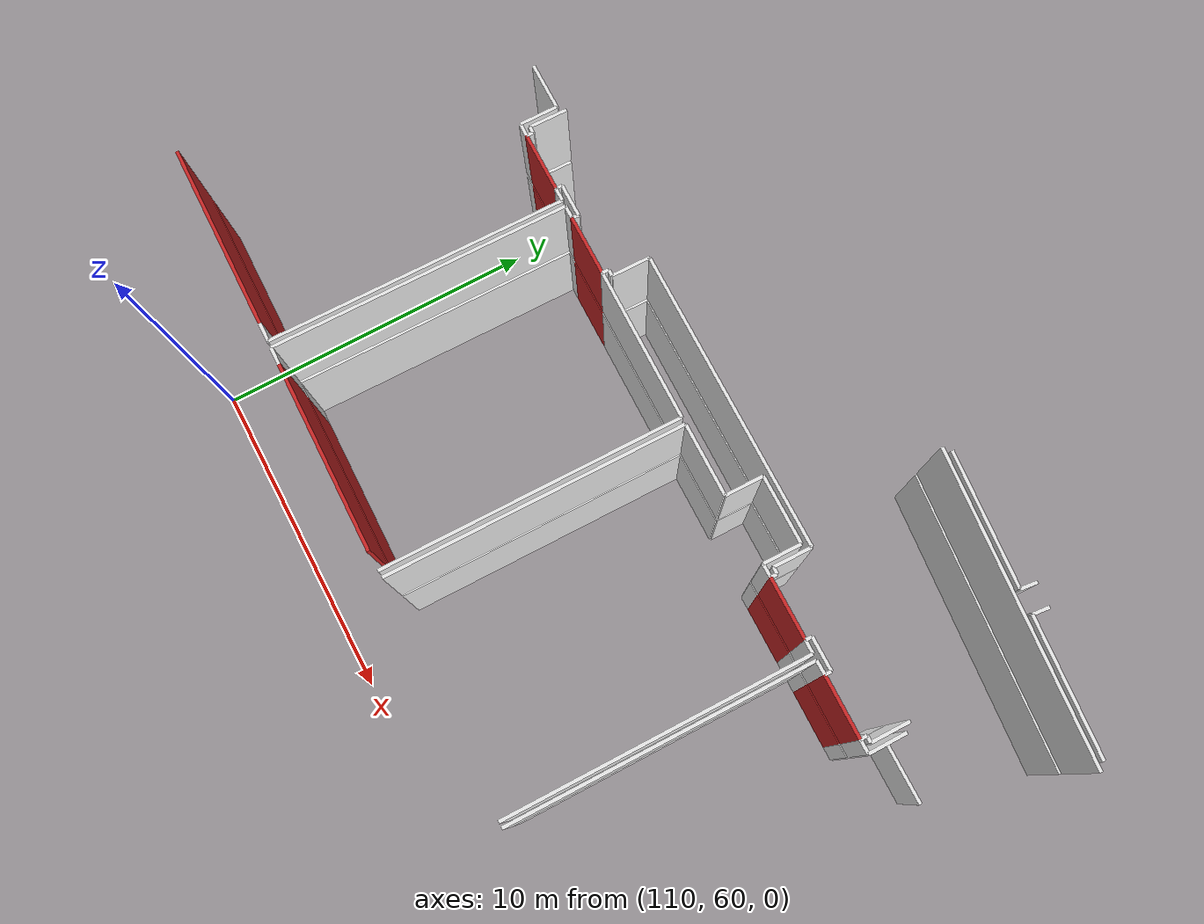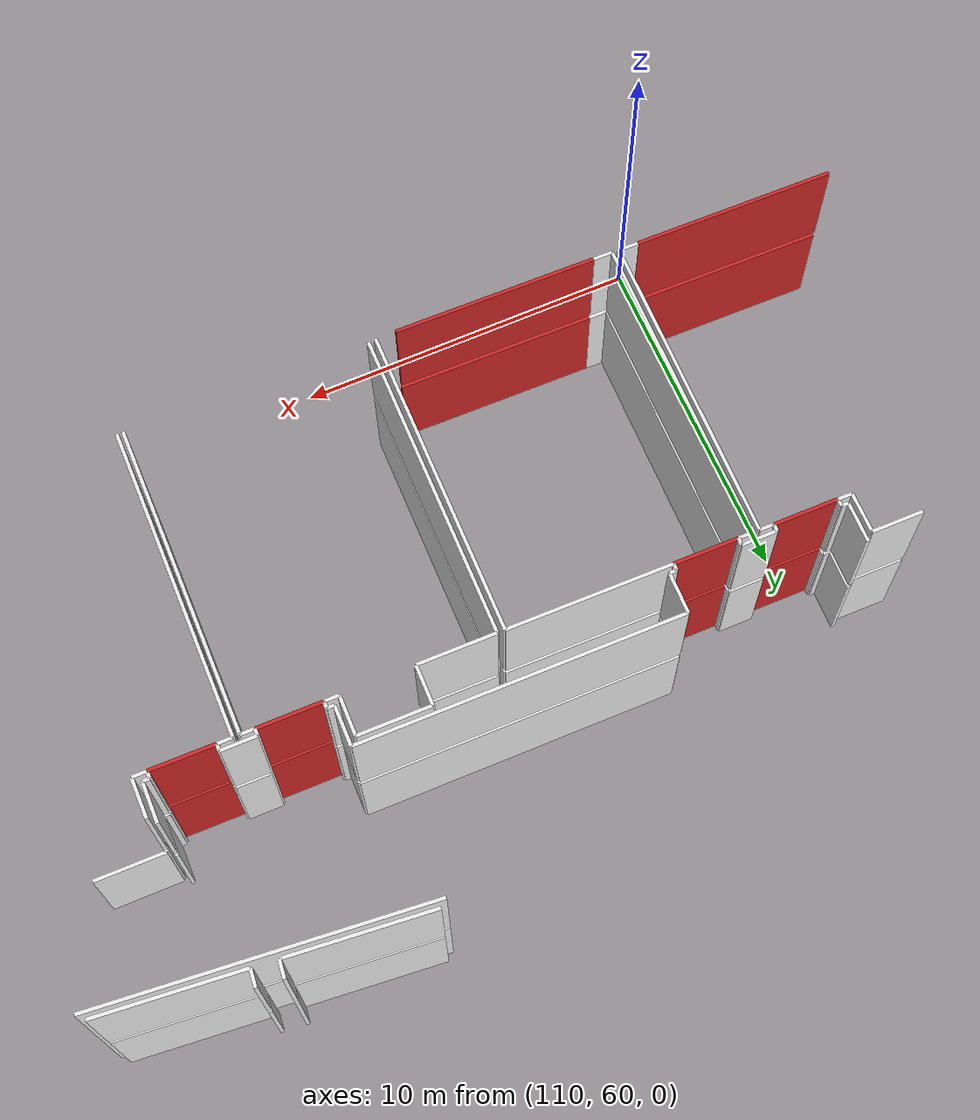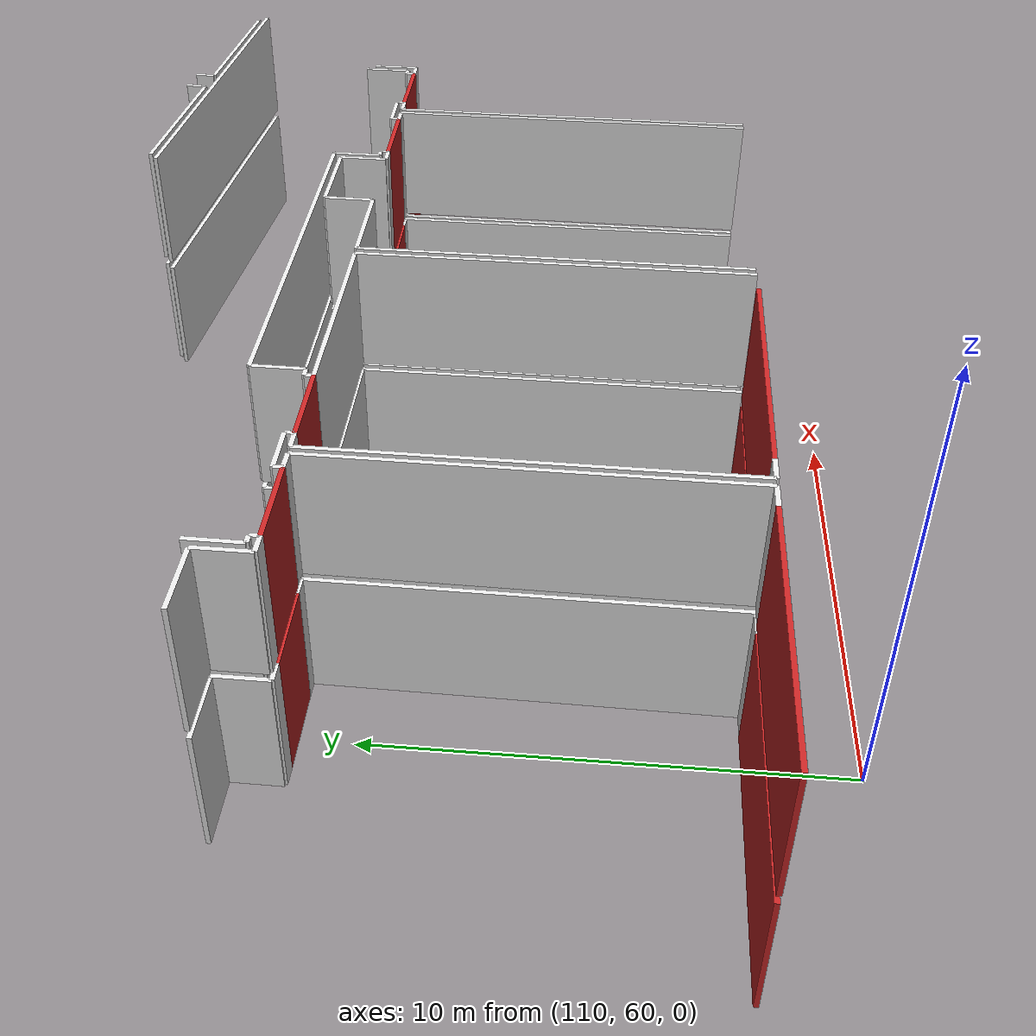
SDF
<sdf version="1.6">
 <world name="default">
  <model name="wall_127.1_71.0_0.0">
   <static>true</static>
   <pose>127.05000000001746 70.9550000000745 1.5 0 0 3.1249275297309125</pose>
   <link name="link">
    <visual name="visual">
     <geometry><box><size>1.8002499826340055 0.1 3</size></box></geometry>
     <material>
      <script><uri>file://media/materials/scripts/gazebo.material</uri><name>Gazebo/Red</name></script>
     </material>
    </visual>
   </link>
  </model>
  <model name="wall_124.3_71.0_0.0">
   <static>true</static>
   <pose>124.26499999998487 70.98999999999069 1.5 0 0 3.1305433795001205</pose>
   <link name="link">
    <visual name="visual">
     <geometry><box><size>1.810110493862824 0.1 3</size></box></geometry>
     <material>
      <script><uri>file://media/materials/scripts/gazebo.material</uri><name>Gazebo/Red</name></script>
     </material>
    </visual>
   </link>
  </model>
  <model name="wall_113.0_71.1_0.0">
   <static>true</static>
   <pose>113.03500000000349 71.13000000012107 1.5 0 0 3.1305433795001205</pose>
   <link name="link">
    <visual name="visual">
     <geometry><box><size>1.810110493862824 0.1 3</size></box></geometry>
     <material>
      <script><uri>file://media/materials/scripts/gazebo.material</uri><name>Gazebo/Red</name></script>
     </material>
    </visual>
   </link>
  </model>
  <model name="wall_110.2_71.2_0.0">
   <static>true</static>
   <pose>110.23500000001513 71.17000000015832 1.5 0 0 3.1305433795001205</pose>
   <link name="link">
    <visual name="visual">
     <geometry><box><size>1.810110493862824 0.1 3</size></box></geometry>
     <material>
      <script><uri>file://media/materials/scripts/gazebo.material</uri><name>Gazebo/Red</name></script>
     </material>
    </visual>
   </link>
  </model>
  <model name="wall_115.0_62.2_0.0">
   <static>true</static>
   <pose>115.0 62.23999999999069 1.5 0 0 -0.014034166198596688</pose>
   <link name="link">
    <visual name="visual">
     <geometry><box><size>5.700561375812611 0.1 3</size></box></geometry>
     <material>
      <script><uri>file://media/materials/scripts/gazebo.material</uri><name>Gazebo/Red</name></script>
     </material>
    </visual>
   </link>
  </model>
  <model name="wall_108.0_62.3_0.0">
   <static>true</static>
   <pose>107.99499999999534 62.34499999997206 1.5 0 0 -0.012258580285916719</pose>
   <link name="link">
    <visual name="visual">
     <geometry><box><size>5.710429055644689 0.1 3</size></box></geometry>
     <material>
      <script><uri>file://media/materials/scripts/gazebo.material</uri><name>Gazebo/Red</name></script>
     </material>
    </visual>
   </link>
  </model>
  <model name="wall_127.4_76.6_0.0">
   <static>true</static>
   <pose>127.375 76.64500000001863 1.5 0 0 -1.6724851786059602</pose>
   <link name="link">
    <visual name="visual">
     <geometry><box><size>0.4925444144680799 0.1 3</size></box></geometry>
     <material>
      <script><uri>file://media/materials/scripts/gazebo.material</uri><name>Gazebo/White</name></script>
     </material>
    </visual>
   </link>
  </model>
  <model name="wall_129.3_76.2_0.0">
   <static>true</static>
   <pose>129.31500000000233 76.19999999995343 1.5 0 0 -0.10143187482049365</pose>
   <link name="link">
    <visual name="visual">
     <geometry><box><size>3.9503037858281362 0.1 3</size></box></geometry>
     <material>
      <script><uri>file://media/materials/scripts/gazebo.material</uri><name>Gazebo/White</name></script>
     </material>
    </visual>
   </link>
  </model>
  <model name="wall_124.7_76.7_0.0">
   <static>true</static>
   <pose>124.68000000002212 76.67000000015832 1.5 0 0 -0.10117618901410476</pose>
   <link name="link">
    <visual name="visual">
     <geometry><box><size>3.9602525171943066 0.1 3</size></box></geometry>
     <material>
      <script><uri>file://media/materials/scripts/gazebo.material</uri><name>Gazebo/White</name></script>
     </material>
    </visual>
   </link>
  </model>
  <model name="wall_126.7_76.7_0.0">
   <static>true</static>
   <pose>126.68000000002212 76.72000000020489 1.5 0 0 1.4513674007811488</pose>
   <link name="link">
    <visual name="visual">
     <geometry><box><size>0.5035871324802894 0.1 3</size></box></geometry>
     <material>
      <script><uri>file://media/materials/scripts/gazebo.material</uri><name>Gazebo/White</name></script>
     </material>
    </visual>
   </link>
  </model>
  <model name="wall_127.0_76.2_0.0">
   <static>true</static>
   <pose>126.98499999998603 76.23999999999069 1.5 0 0 3.0415928752928885</pose>
   <link name="link">
    <visual name="visual">
     <geometry><box><size>9.01503743748916 0.1 3</size></box></geometry>
     <material>
      <script><uri>file://media/materials/scripts/gazebo.material</uri><name>Gazebo/White</name></script>
     </material>
    </visual>
   </link>
  </model>
  <model name="wall_109.1_72.0_0.0">
   <static>true</static>
   <pose>109.14000000001397 71.95499999984168 1.5 0 0 -1.5881858781018272</pose>
   <link name="link">
    <visual name="visual">
     <geometry><box><size>1.1501738998023476 0.1 3</size></box></geometry>
     <material>
      <script><uri>file://media/materials/scripts/gazebo.material</uri><name>Gazebo/White</name></script>
     </material>
    </visual>
   </link>
  </model>
  <model name="wall_109.2_71.4_0.0">
   <static>true</static>
   <pose>109.23000000001048 71.37999999988824 1.5 0 0 0.0</pose>
   <link name="link">
    <visual name="visual">
     <geometry><box><size>0.20000000001164153 0.1 3</size></box></geometry>
     <material>
      <script><uri>file://media/materials/scripts/gazebo.material</uri><name>Gazebo/White</name></script>
     </material>
    </visual>
   </link>
  </model>
  <model name="wall_109.3_71.3_0.0">
   <static>true</static>
   <pose>109.3300000000163 71.28000000002794 1.5 0 0 -1.5707963267948966</pose>
   <link name="link">
    <visual name="visual">
     <geometry><box><size>0.19999999972060323 0.1 3</size></box></geometry>
     <material>
      <script><uri>file://media/materials/scripts/gazebo.material</uri><name>Gazebo/White</name></script>
     </material>
    </visual>
   </link>
  </model>
  <model name="wall_111.1_71.3_0.0">
   <static>true</static>
   <pose>111.14000000001397 71.25500000012107 1.5 0 0 1.5707963267948966</pose>
   <link name="link">
    <visual name="visual">
     <geometry><box><size>0.18999999994412065 0.1 3</size></box></geometry>
     <material>
      <script><uri>file://media/materials/scripts/gazebo.material</uri><name>Gazebo/White</name></script>
     </material>
    </visual>
   </link>
  </model>
  <model name="wall_111.6_71.3_0.0">
   <static>true</static>
   <pose>111.64000000001397 71.34499999997206 1.5 0 0 -0.009999666928784895</pose>
   <link name="link">
    <visual name="visual">
     <geometry><box><size>1.0000499987524838 0.1 3</size></box></geometry>
     <material>
      <script><uri>file://media/materials/scripts/gazebo.material</uri><name>Gazebo/White</name></script>
     </material>
    </visual>
   </link>
  </model>
  <model name="wall_112.1_71.2_0.0">
   <static>true</static>
   <pose>112.13500000000931 71.23999999999069 1.5 0 0 -1.6207547226329644</pose>
   <link name="link">
    <visual name="visual">
     <geometry><box><size>0.20024984366642476 0.1 3</size></box></geometry>
     <material>
      <script><uri>file://media/materials/scripts/gazebo.material</uri><name>Gazebo/White</name></script>
     </material>
    </visual>
   </link>
  </model>
  <model name="wall_113.9_71.2_0.0">
   <static>true</static>
   <pose>113.94000000000233 71.21500000008382 1.5 0 0 1.5707963267948966</pose>
   <link name="link">
    <visual name="visual">
     <geometry><box><size>0.18999999994412065 0.1 3</size></box></geometry>
     <material>
      <script><uri>file://media/materials/scripts/gazebo.material</uri><name>Gazebo/White</name></script>
     </material>
    </visual>
   </link>
  </model>
  <model name="wall_114.0_71.3_0.0">
   <static>true</static>
   <pose>114.04000000000815 71.31000000005588 1.5 0 0 0.0</pose>
   <link name="link">
    <visual name="visual">
     <geometry><box><size>0.20000000001164153 0.1 3</size></box></geometry>
     <material>
      <script><uri>file://media/materials/scripts/gazebo.material</uri><name>Gazebo/White</name></script>
     </material>
    </visual>
   </link>
  </model>
  <model name="wall_114.1_71.9_0.0">
   <static>true</static>
   <pose>114.14999999999418 71.88500000000931 1.5 0 0 1.553406775538566</pose>
   <link name="link">
    <visual name="visual">
     <geometry><box><size>1.1501738998013356 0.1 3</size></box></geometry>
     <material>
      <script><uri>file://media/materials/scripts/gazebo.material</uri><name>Gazebo/White</name></script>
     </material>
    </visual>
   </link>
  </model>
  <model name="wall_118.7_72.4_0.0">
   <static>true</static>
   <pose>118.6699999999837 72.39500000001863 1.5 0 0 -0.01441141905839594</pose>
   <link name="link">
    <visual name="visual">
     <geometry><box><size>9.020936758469542 0.1 3</size></box></geometry>
     <material>
      <script><uri>file://media/materials/scripts/gazebo.material</uri><name>Gazebo/White</name></script>
     </material>
    </visual>
   </link>
  </model>
  <model name="wall_123.2_71.8_0.0">
   <static>true</static>
   <pose>123.1699999999837 71.76000000000931 1.5 0 0 -1.5883383868666272</pose>
   <link name="link">
    <visual name="visual">
     <geometry><box><size>1.1401754252298297 0.1 3</size></box></geometry>
     <material>
      <script><uri>file://media/materials/scripts/gazebo.material</uri><name>Gazebo/White</name></script>
     </material>
    </visual>
   </link>
  </model>
  <model name="wall_123.3_71.2_0.0">
   <static>true</static>
   <pose>123.26499999998487 71.18999999994412 1.5 0 0 0.0</pose>
   <link name="link">
    <visual name="visual">
     <geometry><box><size>0.21000000002095476 0.1 3</size></box></geometry>
     <material>
      <script><uri>file://media/materials/scripts/gazebo.material</uri><name>Gazebo/White</name></script>
     </material>
    </visual>
   </link>
  </model>
  <model name="wall_123.4_71.1_0.0">
   <static>true</static>
   <pose>123.36499999999069 71.09499999997206 1.5 0 0 -1.6233793884701562</pose>
   <link name="link">
    <visual name="visual">
     <geometry><box><size>0.19026297584909185 0.1 3</size></box></geometry>
     <material>
      <script><uri>file://media/materials/scripts/gazebo.material</uri><name>Gazebo/White</name></script>
     </material>
    </visual>
   </link>
  </model>
  <model name="wall_125.2_71.1_0.0">
   <static>true</static>
   <pose>125.1699999999837 71.07499999995343 1.5 0 0 1.5707963267948966</pose>
   <link name="link">
    <visual name="visual">
     <geometry><box><size>0.18999999994412065 0.1 3</size></box></geometry>
     <material>
      <script><uri>file://media/materials/scripts/gazebo.material</uri><name>Gazebo/White</name></script>
     </material>
    </visual>
   </link>
  </model>
  <model name="wall_125.7_71.2_0.0">
   <static>true</static>
   <pose>125.66499999997905 71.16500000003725 1.5 0 0 -0.010100666359664784</pose>
   <link name="link">
    <visual name="visual">
     <geometry><box><size>0.9900505037507377 0.1 3</size></box></geometry>
     <material>
      <script><uri>file://media/materials/scripts/gazebo.material</uri><name>Gazebo/White</name></script>
     </material>
    </visual>
   </link>
  </model>
  <model name="wall_126.2_71.1_0.0">
   <static>true</static>
   <pose>126.15499999999884 71.06500000017695 1.5 0 0 -1.6233793881646463</pose>
   <link name="link">
    <visual name="visual">
     <geometry><box><size>0.19026297584603252 0.1 3</size></box></geometry>
     <material>
      <script><uri>file://media/materials/scripts/gazebo.material</uri><name>Gazebo/White</name></script>
     </material>
    </visual>
   </link>
  </model>
  <model name="wall_128.0_71.0_0.0">
   <static>true</static>
   <pose>127.95000000001164 71.04000000003725 1.5 0 0 1.5707963267948966</pose>
   <link name="link">
    <visual name="visual">
     <geometry><box><size>0.20000000018626451 0.1 3</size></box></geometry>
     <material>
      <script><uri>file://media/materials/scripts/gazebo.material</uri><name>Gazebo/White</name></script>
     </material>
    </visual>
   </link>
  </model>
  <model name="wall_128.0_71.1_0.0">
   <static>true</static>
   <pose>128.0450000000128 71.13500000000931 1.5 0 0 -0.0525830628812194</pose>
   <link name="link">
    <visual name="visual">
     <geometry><box><size>0.19026297591945637 0.1 3</size></box></geometry>
     <material>
      <script><uri>file://media/materials/scripts/gazebo.material</uri><name>Gazebo/White</name></script>
     </material>
    </visual>
   </link>
  </model>
  <model name="wall_128.1_71.7_0.0">
   <static>true</static>
   <pose>128.14999999999418 71.69999999995343 1.5 0 0 1.5532542667742097</pose>
   <link name="link">
    <visual name="visual">
     <geometry><box><size>1.1401754252288088 0.1 3</size></box></geometry>
     <material>
      <script><uri>file://media/materials/scripts/gazebo.material</uri><name>Gazebo/White</name></script>
     </material>
    </visual>
   </link>
  </model>
  <model name="wall_118.5_66.6_0.0">
   <static>true</static>
   <pose>118.47999999998137 66.61999999987893 1.5 0 0 1.557253136818869</pose>
   <link name="link">
    <visual name="visual">
     <geometry><box><size>8.860812603688696 0.1 3</size></box></geometry>
     <material>
      <script><uri>file://media/materials/scripts/gazebo.material</uri><name>Gazebo/White</name></script>
     </material>
    </visual>
   </link>
  </model>
  <model name="wall_116.2_71.1_0.0">
   <static>true</static>
   <pose>116.23999999999069 71.08499999996275 1.5 0 0 3.1263764366827713</pose>
   <link name="link">
    <visual name="visual">
     <geometry><box><size>4.60053257784656 0.1 3</size></box></geometry>
     <material>
      <script><uri>file://media/materials/scripts/gazebo.material</uri><name>Gazebo/White</name></script>
     </material>
    </visual>
   </link>
  </model>
  <model name="wall_111.9_71.1_0.0">
   <static>true</static>
   <pose>111.92999999999302 71.14500000001863 1.5 0 0 3.116597860530772</pose>
   <link name="link">
    <visual name="visual">
     <geometry><box><size>0.40012498049254075 0.1 3</size></box></geometry>
     <material>
      <script><uri>file://media/materials/scripts/gazebo.material</uri><name>Gazebo/White</name></script>
     </material>
    </visual>
   </link>
  </model>
  <model name="wall_111.7_66.7_0.0">
   <static>true</static>
   <pose>111.6699999999837 66.71999999997206 1.5 0 0 -1.5843395167709244</pose>
   <link name="link">
    <visual name="visual">
     <geometry><box><size>8.860812603688696 0.1 3</size></box></geometry>
     <material>
      <script><uri>file://media/materials/scripts/gazebo.material</uri><name>Gazebo/White</name></script>
     </material>
    </visual>
   </link>
  </model>
  <model name="wall_111.9_62.3_0.0">
   <static>true</static>
   <pose>111.88000000000466 62.28499999991618 1.5 0 0 -0.018516402514992796</pose>
   <link name="link">
    <visual name="visual">
     <geometry><box><size>0.540092584697361 0.1 3</size></box></geometry>
     <material>
      <script><uri>file://media/materials/scripts/gazebo.material</uri><name>Gazebo/White</name></script>
     </material>
    </visual>
   </link>
  </model>
  <model name="wall_125.5_66.5_0.0">
   <static>true</static>
   <pose>125.5 66.53500000014901 1.5 0 0 1.5572684034898048</pose>
   <link name="link">
    <visual name="visual">
     <geometry><box><size>8.870811687888628 0.1 3</size></box></geometry>
     <material>
      <script><uri>file://media/materials/scripts/gazebo.material</uri><name>Gazebo/White</name></script>
     </material>
    </visual>
   </link>
  </model>
  <model name="wall_125.4_71.0_0.0">
   <static>true</static>
   <pose>125.36499999999069 70.97500000009313 1.5 0 0 3.115957245641779</pose>
   <link name="link">
    <visual name="visual">
     <geometry><box><size>0.3901281840708591 0.1 3</size></box></geometry>
     <material>
      <script><uri>file://media/materials/scripts/gazebo.material</uri><name>Gazebo/White</name></script>
     </material>
    </visual>
   </link>
  </model>
  <model name="wall_123.2_71.0_0.0">
   <static>true</static>
   <pose>123.16000000000349 71.0 1.5 0 0 3.141592653589793</pose>
   <link name="link">
    <visual name="visual">
     <geometry><box><size>0.3999999999650754 0.1 3</size></box></geometry>
     <material>
      <script><uri>file://media/materials/scripts/gazebo.material</uri><name>Gazebo/White</name></script>
     </material>
    </visual>
   </link>
  </model>
  <model name="wall_123.0_71.6_0.0">
   <static>true</static>
   <pose>122.97000000000116 71.56499999994412 1.5 0 0 1.553099059570393</pose>
   <link name="link">
    <visual name="visual">
     <geometry><box><size>1.130176977179168 0.1 3</size></box></geometry>
     <material>
      <script><uri>file://media/materials/scripts/gazebo.material</uri><name>Gazebo/White</name></script>
     </material>
    </visual>
   </link>
  </model>
  <model name="wall_122.0_72.1_0.0">
   <static>true</static>
   <pose>121.96499999999651 72.14500000001863 1.5 0 0 3.12681540405365</pose>
   <link name="link">
    <visual name="visual">
     <geometry><box><size>2.0302216627483705 0.1 3</size></box></geometry>
     <material>
      <script><uri>file://media/materials/scripts/gazebo.material</uri><name>Gazebo/White</name></script>
     </material>
    </visual>
   </link>
  </model>
  <model name="wall_120.9_71.6_0.0">
   <static>true</static>
   <pose>120.94000000000233 71.59000000008382 1.5 0 0 -1.5883383868666272</pose>
   <link name="link">
    <visual name="visual">
     <geometry><box><size>1.1401754252298297 0.1 3</size></box></geometry>
     <material>
      <script><uri>file://media/materials/scripts/gazebo.material</uri><name>Gazebo/White</name></script>
     </material>
    </visual>
   </link>
  </model>
  <model name="wall_119.8_71.0_0.0">
   <static>true</static>
   <pose>119.83999999999651 71.03499999991618 1.5 0 0 3.1278320544015297</pose>
   <link name="link">
    <visual name="visual">
     <geometry><box><size>2.1802064122365232 0.1 3</size></box></geometry>
     <material>
      <script><uri>file://media/materials/scripts/gazebo.material</uri><name>Gazebo/White</name></script>
     </material>
    </visual>
   </link>
  </model>
  <model name="wall_118.7_66.6_0.0">
   <static>true</static>
   <pose>118.69000000000233 66.62999999988824 1.5 0 0 -1.5843701537129677</pose>
   <link name="link">
    <visual name="visual">
     <geometry><box><size>8.840814441971077 0.1 3</size></box></geometry>
     <material>
      <script><uri>file://media/materials/scripts/gazebo.material</uri><name>Gazebo/White</name></script>
     </material>
    </visual>
   </link>
  </model>
  <model name="wall_129.4_72.0_0.0">
   <static>true</static>
   <pose>129.35999999998603 72.0449999999255 1.5 0 0 3.126593778307587</pose>
   <link name="link">
    <visual name="visual">
     <geometry><box><size>2.0002249873490845 0.1 3</size></box></geometry>
     <material>
      <script><uri>file://media/materials/scripts/gazebo.material</uri><name>Gazebo/White</name></script>
     </material>
    </visual>
   </link>
  </model>
  <model name="wall_128.4_71.5_0.0">
   <static>true</static>
   <pose>128.35499999998137 71.5 1.5 0 0 -1.5797246609821571</pose>
   <link name="link">
    <visual name="visual">
     <geometry><box><size>1.1200446420792904 0.1 3</size></box></geometry>
     <material>
      <script><uri>file://media/materials/scripts/gazebo.material</uri><name>Gazebo/White</name></script>
     </material>
    </visual>
   </link>
  </model>
  <model name="wall_128.1_70.9_0.0">
   <static>true</static>
   <pose>128.14999999999418 70.93999999994412 1.5 0 0 3.141592653589793</pose>
   <link name="link">
    <visual name="visual">
     <geometry><box><size>0.3999999999650754 0.1 3</size></box></geometry>
     <material>
      <script><uri>file://media/materials/scripts/gazebo.material</uri><name>Gazebo/White</name></script>
     </material>
    </visual>
   </link>
  </model>
  <model name="wall_125.9_71.0_0.0">
   <static>true</static>
   <pose>125.94500000000698 70.97000000020489 1.5 0 0 3.141592653589793</pose>
   <link name="link">
    <visual name="visual">
     <geometry><box><size>0.4100000000325963 0.1 3</size></box></geometry>
     <material>
      <script><uri>file://media/materials/scripts/gazebo.material</uri><name>Gazebo/White</name></script>
     </material>
    </visual>
   </link>
  </model>
  <model name="wall_125.7_66.5_0.0">
   <static>true</static>
   <pose>125.67499999998836 66.53500000014901 1.5 0 0 -1.5854514218446472</pose>
   <link name="link">
    <visual name="visual">
     <geometry><box><size>8.87095259833936 0.1 3</size></box></geometry>
     <material>
      <script><uri>file://media/materials/scripts/gazebo.material</uri><name>Gazebo/White</name></script>
     </material>
    </visual>
   </link>
  </model>
  <model name="wall_111.5_66.7_0.0">
   <static>true</static>
   <pose>111.47499999997672 66.7249999998603 1.5 0 0 1.5561081176441238</pose>
   <link name="link">
    <visual name="visual">
     <geometry><box><size>8.850954750853134 0.1 3</size></box></geometry>
     <material>
      <script><uri>file://media/materials/scripts/gazebo.material</uri><name>Gazebo/White</name></script>
     </material>
    </visual>
   </link>
  </model>
  <model name="wall_111.3_71.2_0.0">
   <static>true</static>
   <pose>111.33999999999651 71.15500000002794 1.5 0 0 3.11659785936371</pose>
   <link name="link">
    <visual name="visual">
     <geometry><box><size>0.40012498044598915 0.1 3</size></box></geometry>
     <material>
      <script><uri>file://media/materials/scripts/gazebo.material</uri><name>Gazebo/White</name></script>
     </material>
    </visual>
   </link>
  </model>
  <model name="wall_109.1_71.2_0.0">
   <static>true</static>
   <pose>109.13000000000466 71.18500000005588 1.5 0 0 3.116597860530772</pose>
   <link name="link">
    <visual name="visual">
     <geometry><box><size>0.40012498049254075 0.1 3</size></box></geometry>
     <material>
      <script><uri>file://media/materials/scripts/gazebo.material</uri><name>Gazebo/White</name></script>
     </material>
    </visual>
   </link>
  </model>
  <model name="wall_108.9_71.8_0.0">
   <static>true</static>
   <pose>108.93499999999767 71.76000000000931 1.5 0 0 1.562024621943288</pose>
   <link name="link">
    <visual name="visual">
     <geometry><box><size>1.1400438589359028 0.1 3</size></box></geometry>
     <material>
      <script><uri>file://media/materials/scripts/gazebo.material</uri><name>Gazebo/White</name></script>
     </material>
    </visual>
   </link>
  </model>
  <model name="wall_108.2_72.3_0.0">
   <static>true</static>
   <pose>108.21499999999651 72.34000000008382 1.5 0 0 3.127800424740227</pose>
   <link name="link">
    <visual name="visual">
     <geometry><box><size>1.4501379244866694 0.1 3</size></box></geometry>
     <material>
      <script><uri>file://media/materials/scripts/gazebo.material</uri><name>Gazebo/White</name></script>
     </material>
    </visual>
   </link>
  </model>
  <model name="wall_111.1_62.3_0.0">
   <static>true</static>
   <pose>111.12999999997555 62.30499999993481 1.5 0 0 -0.017855245571888664</pose>
   <link name="link">
    <visual name="visual">
     <geometry><box><size>0.5600892785996132 0.1 3</size></box></geometry>
     <material>
      <script><uri>file://media/materials/scripts/gazebo.material</uri><name>Gazebo/White</name></script>
     </material>
    </visual>
   </link>
  </model>
  <model name="wall_127.1_71.0_3.2">
   <static>true</static>
   <pose>127.05000000001746 70.9550000000745 4.7 0 0 3.1249275297309125</pose>
   <link name="link">
    <visual name="visual">
     <geometry><box><size>1.8002499826340055 0.1 3</size></box></geometry>
     <material>
      <script><uri>file://media/materials/scripts/gazebo.material</uri><name>Gazebo/Red</name></script>
     </material>
    </visual>
   </link>
  </model>
  <model name="wall_124.3_71.0_3.2">
   <static>true</static>
   <pose>124.26499999998487 70.98999999999069 4.7 0 0 3.1305433795001205</pose>
   <link name="link">
    <visual name="visual">
     <geometry><box><size>1.810110493862824 0.1 3</size></box></geometry>
     <material>
      <script><uri>file://media/materials/scripts/gazebo.material</uri><name>Gazebo/Red</name></script>
     </material>
    </visual>
   </link>
  </model>
  <model name="wall_113.0_71.1_3.2">
   <static>true</static>
   <pose>113.03500000000349 71.13000000012107 4.7 0 0 3.1305433795001205</pose>
   <link name="link">
    <visual name="visual">
     <geometry><box><size>1.810110493862824 0.1 3</size></box></geometry>
     <material>
      <script><uri>file://media/materials/scripts/gazebo.material</uri><name>Gazebo/Red</name></script>
     </material>
    </visual>
   </link>
  </model>
  <model name="wall_110.2_71.2_3.2">
   <static>true</static>
   <pose>110.23500000001513 71.17000000015832 4.7 0 0 3.1305433795001205</pose>
   <link name="link">
    <visual name="visual">
     <geometry><box><size>1.810110493862824 0.1 3</size></box></geometry>
     <material>
      <script><uri>file://media/materials/scripts/gazebo.material</uri><name>Gazebo/Red</name></script>
     </material>
    </visual>
   </link>
  </model>
  <model name="wall_115.0_62.2_3.2">
   <static>true</static>
   <pose>115.0 62.23999999999069 4.7 0 0 -0.014034166198596688</pose>
   <link name="link">
    <visual name="visual">
     <geometry><box><size>5.700561375812611 0.1 3</size></box></geometry>
     <material>
      <script><uri>file://media/materials/scripts/gazebo.material</uri><name>Gazebo/Red</name></script>
     </material>
    </visual>
   </link>
  </model>
  <model name="wall_108.0_62.3_3.2">
   <static>true</static>
   <pose>107.99499999999534 62.34499999997206 4.7 0 0 -0.012258580285916719</pose>
   <link name="link">
    <visual name="visual">
     <geometry><box><size>5.710429055644689 0.1 3</size></box></geometry>
     <material>
      <script><uri>file://media/materials/scripts/gazebo.material</uri><name>Gazebo/Red</name></script>
     </material>
    </visual>
   </link>
  </model>
  <model name="wall_127.4_76.6_3.2">
   <static>true</static>
   <pose>127.375 76.64500000001863 4.7 0 0 -1.6724851786059602</pose>
   <link name="link">
    <visual name="visual">
     <geometry><box><size>0.4925444144680799 0.1 3</size></box></geometry>
     <material>
      <script><uri>file://media/materials/scripts/gazebo.material</uri><name>Gazebo/White</name></script>
     </material>
    </visual>
   </link>
  </model>
  <model name="wall_129.3_76.2_3.2">
   <static>true</static>
   <pose>129.31500000000233 76.19999999995343 4.7 0 0 -0.10143187482049365</pose>
   <link name="link">
    <visual name="visual">
     <geometry><box><size>3.9503037858281362 0.1 3</size></box></geometry>
     <material>
      <script><uri>file://media/materials/scripts/gazebo.material</uri><name>Gazebo/White</name></script>
     </material>
    </visual>
   </link>
  </model>
  <model name="wall_124.7_76.7_3.2">
   <static>true</static>
   <pose>124.68000000002212 76.67000000015832 4.7 0 0 -0.10117618901410476</pose>
   <link name="link">
    <visual name="visual">
     <geometry><box><size>3.9602525171943066 0.1 3</size></box></geometry>
     <material>
      <script><uri>file://media/materials/scripts/gazebo.material</uri><name>Gazebo/White</name></script>
     </material>
    </visual>
   </link>
  </model>
  <model name="wall_126.7_76.7_3.2">
   <static>true</static>
   <pose>126.68000000002212 76.72000000020489 4.7 0 0 1.4513674007811488</pose>
   <link name="link">
    <visual name="visual">
     <geometry><box><size>0.5035871324802894 0.1 3</size></box></geometry>
     <material>
      <script><uri>file://media/materials/scripts/gazebo.material</uri><name>Gazebo/White</name></script>
     </material>
    </visual>
   </link>
  </model>
  <model name="wall_127.0_76.2_3.2">
   <static>true</static>
   <pose>126.98499999998603 76.23999999999069 4.7 0 0 3.0415928752928885</pose>
   <link name="link">
    <visual name="visual">
     <geometry><box><size>9.01503743748916 0.1 3</size></box></geometry>
     <material>
      <script><uri>file://media/materials/scripts/gazebo.material</uri><name>Gazebo/White</name></script>
     </material>
    </visual>
   </link>
  </model>
  <model name="wall_109.1_72.0_3.2">
   <static>true</static>
   <pose>109.14000000001397 71.95499999984168 4.7 0 0 -1.5881858781018272</pose>
   <link name="link">
    <visual name="visual">
     <geometry><box><size>1.1501738998023476 0.1 3</size></box></geometry>
     <material>
      <script><uri>file://media/materials/scripts/gazebo.material</uri><name>Gazebo/White</name></script>
     </material>
    </visual>
   </link>
  </model>
  <model name="wall_109.2_71.4_3.2">
   <static>true</static>
   <pose>109.23000000001048 71.37999999988824 4.7 0 0 0.0</pose>
   <link name="link">
    <visual name="visual">
     <geometry><box><size>0.20000000001164153 0.1 3</size></box></geometry>
     <material>
      <script><uri>file://media/materials/scripts/gazebo.material</uri><name>Gazebo/White</name></script>
     </material>
    </visual>
   </link>
  </model>
  <model name="wall_109.3_71.3_3.2">
   <static>true</static>
   <pose>109.3300000000163 71.28000000002794 4.7 0 0 -1.5707963267948966</pose>
   <link name="link">
    <visual name="visual">
     <geometry><box><size>0.19999999972060323 0.1 3</size></box></geometry>
     <material>
      <script><uri>file://media/materials/scripts/gazebo.material</uri><name>Gazebo/White</name></script>
     </material>
    </visual>
   </link>
  </model>
  <model name="wall_111.1_71.3_3.2">
   <static>true</static>
   <pose>111.14000000001397 71.25500000012107 4.7 0 0 1.5707963267948966</pose>
   <link name="link">
    <visual name="visual">
     <geometry><box><size>0.18999999994412065 0.1 3</size></box></geometry>
     <material>
      <script><uri>file://media/materials/scripts/gazebo.material</uri><name>Gazebo/White</name></script>
     </material>
    </visual>
   </link>
  </model>
  <model name="wall_111.6_71.3_3.2">
   <static>true</static>
   <pose>111.64000000001397 71.34499999997206 4.7 0 0 -0.009999666928784895</pose>
   <link name="link">
    <visual name="visual">
     <geometry><box><size>1.0000499987524838 0.1 3</size></box></geometry>
     <material>
      <script><uri>file://media/materials/scripts/gazebo.material</uri><name>Gazebo/White</name></script>
     </material>
    </visual>
   </link>
  </model>
  <model name="wall_112.1_71.2_3.2">
   <static>true</static>
   <pose>112.13500000000931 71.23999999999069 4.7 0 0 -1.6207547226329644</pose>
   <link name="link">
    <visual name="visual">
     <geometry><box><size>0.20024984366642476 0.1 3</size></box></geometry>
     <material>
      <script><uri>file://media/materials/scripts/gazebo.material</uri><name>Gazebo/White</name></script>
     </material>
    </visual>
   </link>
  </model>
  <model name="wall_113.9_71.2_3.2">
   <static>true</static>
   <pose>113.94000000000233 71.21500000008382 4.7 0 0 1.5707963267948966</pose>
   <link name="link">
    <visual name="visual">
     <geometry><box><size>0.18999999994412065 0.1 3</size></box></geometry>
     <material>
      <script><uri>file://media/materials/scripts/gazebo.material</uri><name>Gazebo/White</name></script>
     </material>
    </visual>
   </link>
  </model>
  <model name="wall_114.0_71.3_3.2">
   <static>true</static>
   <pose>114.04000000000815 71.31000000005588 4.7 0 0 0.0</pose>
   <link name="link">
    <visual name="visual">
     <geometry><box><size>0.20000000001164153 0.1 3</size></box></geometry>
     <material>
      <script><uri>file://media/materials/scripts/gazebo.material</uri><name>Gazebo/White</name></script>
     </material>
    </visual>
   </link>
  </model>
  <model name="wall_114.1_71.9_3.2">
   <static>true</static>
   <pose>114.14999999999418 71.88500000000931 4.7 0 0 1.553406775538566</pose>
   <link name="link">
    <visual name="visual">
     <geometry><box><size>1.1501738998013356 0.1 3</size></box></geometry>
     <material>
      <script><uri>file://media/materials/scripts/gazebo.material</uri><name>Gazebo/White</name></script>
     </material>
    </visual>
   </link>
  </model>
  <model name="wall_118.7_72.4_3.2">
   <static>true</static>
   <pose>118.6699999999837 72.39500000001863 4.7 0 0 -0.01441141905839594</pose>
   <link name="link">
    <visual name="visual">
     <geometry><box><size>9.020936758469542 0.1 3</size></box></geometry>
     <material>
      <script><uri>file://media/materials/scripts/gazebo.material</uri><name>Gazebo/White</name></script>
     </material>
    </visual>
   </link>
  </model>
  <model name="wall_123.2_71.8_3.2">
   <static>true</static>
   <pose>123.1699999999837 71.76000000000931 4.7 0 0 -1.5883383868666272</pose>
   <link name="link">
    <visual name="visual">
     <geometry><box><size>1.1401754252298297 0.1 3</size></box></geometry>
     <material>
      <script><uri>file://media/materials/scripts/gazebo.material</uri><name>Gazebo/White</name></script>
     </material>
    </visual>
   </link>
  </model>
  <model name="wall_123.3_71.2_3.2">
   <static>true</static>
   <pose>123.26499999998487 71.18999999994412 4.7 0 0 0.0</pose>
   <link name="link">
    <visual name="visual">
     <geometry><box><size>0.21000000002095476 0.1 3</size></box></geometry>
     <material>
      <script><uri>file://media/materials/scripts/gazebo.material</uri><name>Gazebo/White</name></script>
     </material>
    </visual>
   </link>
  </model>
  <model name="wall_123.4_71.1_3.2">
   <static>true</static>
   <pose>123.36499999999069 71.09499999997206 4.7 0 0 -1.6233793884701562</pose>
   <link name="link">
    <visual name="visual">
     <geometry><box><size>0.19026297584909185 0.1 3</size></box></geometry>
     <material>
      <script><uri>file://media/materials/scripts/gazebo.material</uri><name>Gazebo/White</name></script>
     </material>
    </visual>
   </link>
  </model>
  <model name="wall_125.2_71.1_3.2">
   <static>true</static>
   <pose>125.1699999999837 71.07499999995343 4.7 0 0 1.5707963267948966</pose>
   <link name="link">
    <visual name="visual">
     <geometry><box><size>0.18999999994412065 0.1 3</size></box></geometry>
     <material>
      <script><uri>file://media/materials/scripts/gazebo.material</uri><name>Gazebo/White</name></script>
     </material>
    </visual>
   </link>
  </model>
  <model name="wall_125.7_71.2_3.2">
   <static>true</static>
   <pose>125.66499999997905 71.16500000003725 4.7 0 0 -0.010100666359664784</pose>
   <link name="link">
    <visual name="visual">
     <geometry><box><size>0.9900505037507377 0.1 3</size></box></geometry>
     <material>
      <script><uri>file://media/materials/scripts/gazebo.material</uri><name>Gazebo/White</name></script>
     </material>
    </visual>
   </link>
  </model>
  <model name="wall_126.2_71.1_3.2">
   <static>true</static>
   <pose>126.15499999999884 71.06500000017695 4.7 0 0 -1.6233793881646463</pose>
   <link name="link">
    <visual name="visual">
     <geometry><box><size>0.19026297584603252 0.1 3</size></box></geometry>
     <material>
      <script><uri>file://media/materials/scripts/gazebo.material</uri><name>Gazebo/White</name></script>
     </material>
    </visual>
   </link>
  </model>
  <model name="wall_128.0_71.0_3.2">
   <static>true</static>
   <pose>127.95000000001164 71.04000000003725 4.7 0 0 1.5707963267948966</pose>
   <link name="link">
    <visual name="visual">
     <geometry><box><size>0.20000000018626451 0.1 3</size></box></geometry>
     <material>
      <script><uri>file://media/materials/scripts/gazebo.material</uri><name>Gazebo/White</name></script>
     </material>
    </visual>
   </link>
  </model>
  <model name="wall_128.0_71.1_3.2">
   <static>true</static>
   <pose>128.0450000000128 71.13500000000931 4.7 0 0 -0.0525830628812194</pose>
   <link name="link">
    <visual name="visual">
     <geometry><box><size>0.19026297591945637 0.1 3</size></box></geometry>
     <material>
      <script><uri>file://media/materials/scripts/gazebo.material</uri><name>Gazebo/White</name></script>
     </material>
    </visual>
   </link>
  </model>
  <model name="wall_128.1_71.7_3.2">
   <static>true</static>
   <pose>128.14999999999418 71.69999999995343 4.7 0 0 1.5532542667742097</pose>
   <link name="link">
    <visual name="visual">
     <geometry><box><size>1.1401754252288088 0.1 3</size></box></geometry>
     <material>
      <script><uri>file://media/materials/scripts/gazebo.material</uri><name>Gazebo/White</name></script>
     </material>
    </visual>
   </link>
  </model>
  <model name="wall_118.5_66.6_3.2">
   <static>true</static>
   <pose>118.47999999998137 66.61999999987893 4.7 0 0 1.557253136818869</pose>
   <link name="link">
    <visual name="visual">
     <geometry><box><size>8.860812603688696 0.1 3</size></box></geometry>
     <material>
      <script><uri>file://media/materials/scripts/gazebo.material</uri><name>Gazebo/White</name></script>
     </material>
    </visual>
   </link>
  </model>
  <model name="wall_116.2_71.1_3.2">
   <static>true</static>
   <pose>116.23999999999069 71.08499999996275 4.7 0 0 3.1263764366827713</pose>
   <link name="link">
    <visual name="visual">
     <geometry><box><size>4.60053257784656 0.1 3</size></box></geometry>
     <material>
      <script><uri>file://media/materials/scripts/gazebo.material</uri><name>Gazebo/White</name></script>
     </material>
    </visual>
   </link>
  </model>
  <model name="wall_111.9_71.1_3.2">
   <static>true</static>
   <pose>111.92999999999302 71.14500000001863 4.7 0 0 3.116597860530772</pose>
   <link name="link">
    <visual name="visual">
     <geometry><box><size>0.40012498049254075 0.1 3</size></box></geometry>
     <material>
      <script><uri>file://media/materials/scripts/gazebo.material</uri><name>Gazebo/White</name></script>
     </material>
    </visual>
   </link>
  </model>
  <model name="wall_111.7_66.7_3.2">
   <static>true</static>
   <pose>111.6699999999837 66.71999999997206 4.7 0 0 -1.5843395167709244</pose>
   <link name="link">
    <visual name="visual">
     <geometry><box><size>8.860812603688696 0.1 3</size></box></geometry>
     <material>
      <script><uri>file://media/materials/scripts/gazebo.material</uri><name>Gazebo/White</name></script>
     </material>
    </visual>
   </link>
  </model>
  <model name="wall_111.9_62.3_3.2">
   <static>true</static>
   <pose>111.88000000000466 62.28499999991618 4.7 0 0 -0.018516402514992796</pose>
   <link name="link">
    <visual name="visual">
     <geometry><box><size>0.540092584697361 0.1 3</size></box></geometry>
     <material>
      <script><uri>file://media/materials/scripts/gazebo.material</uri><name>Gazebo/White</name></script>
     </material>
    </visual>
   </link>
  </model>
  <model name="wall_125.5_66.5_3.2">
   <static>true</static>
   <pose>125.5 66.53500000014901 4.7 0 0 1.5572684034898048</pose>
   <link name="link">
    <visual name="visual">
     <geometry><box><size>8.870811687888628 0.1 3</size></box></geometry>
     <material>
      <script><uri>file://media/materials/scripts/gazebo.material</uri><name>Gazebo/White</name></script>
     </material>
    </visual>
   </link>
  </model>
  <model name="wall_125.4_71.0_3.2">
   <static>true</static>
   <pose>125.36499999999069 70.97500000009313 4.7 0 0 3.115957245641779</pose>
   <link name="link">
    <visual name="visual">
     <geometry><box><size>0.3901281840708591 0.1 3</size></box></geometry>
     <material>
      <script><uri>file://media/materials/scripts/gazebo.material</uri><name>Gazebo/White</name></script>
     </material>
    </visual>
   </link>
  </model>
  <model name="wall_123.2_71.0_3.2">
   <static>true</static>
   <pose>123.16000000000349 71.0 4.7 0 0 3.141592653589793</pose>
   <link name="link">
    <visual name="visual">
     <geometry><box><size>0.3999999999650754 0.1 3</size></box></geometry>
     <material>
      <script><uri>file://media/materials/scripts/gazebo.material</uri><name>Gazebo/White</name></script>
     </material>
    </visual>
   </link>
  </model>
  <model name="wall_123.0_71.6_3.2">
   <static>true</static>
   <pose>122.97000000000116 71.56499999994412 4.7 0 0 1.553099059570393</pose>
   <link name="link">
    <visual name="visual">
     <geometry><box><size>1.130176977179168 0.1 3</size></box></geometry>
     <material>
      <script><uri>file://media/materials/scripts/gazebo.material</uri><name>Gazebo/White</name></script>
     </material>
    </visual>
   </link>
  </model>
  <model name="wall_122.0_72.1_3.2">
   <static>true</static>
   <pose>121.96499999999651 72.14500000001863 4.7 0 0 3.12681540405365</pose>
   <link name="link">
    <visual name="visual">
     <geometry><box><size>2.0302216627483705 0.1 3</size></box></geometry>
     <material>
      <script><uri>file://media/materials/scripts/gazebo.material</uri><name>Gazebo/White</name></script>
     </material>
    </visual>
   </link>
  </model>
  <model name="wall_120.9_71.6_3.2">
   <static>true</static>
   <pose>120.94000000000233 71.59000000008382 4.7 0 0 -1.5883383868666272</pose>
   <link name="link">
    <visual name="visual">
     <geometry><box><size>1.1401754252298297 0.1 3</size></box></geometry>
     <material>
      <script><uri>file://media/materials/scripts/gazebo.material</uri><name>Gazebo/White</name></script>
     </material>
    </visual>
   </link>
  </model>
  <model name="wall_119.8_71.0_3.2">
   <static>true</static>
   <pose>119.83999999999651 71.03499999991618 4.7 0 0 3.1278320544015297</pose>
   <link name="link">
    <visual name="visual">
     <geometry><box><size>2.1802064122365232 0.1 3</size></box></geometry>
     <material>
      <script><uri>file://media/materials/scripts/gazebo.material</uri><name>Gazebo/White</name></script>
     </material>
    </visual>
   </link>
  </model>
  <model name="wall_118.7_66.6_3.2">
   <static>true</static>
   <pose>118.69000000000233 66.62999999988824 4.7 0 0 -1.5843701537129677</pose>
   <link name="link">
    <visual name="visual">
     <geometry><box><size>8.840814441971077 0.1 3</size></box></geometry>
     <material>
      <script><uri>file://media/materials/scripts/gazebo.material</uri><name>Gazebo/White</name></script>
     </material>
    </visual>
   </link>
  </model>
  <model name="wall_128.4_71.5_3.2">
   <static>true</static>
   <pose>128.35499999998137 71.5 4.7 0 0 -1.5797246609821571</pose>
   <link name="link">
    <visual name="visual">
     <geometry><box><size>1.1200446420792904 0.1 3</size></box></geometry>
     <material>
      <script><uri>file://media/materials/scripts/gazebo.material</uri><name>Gazebo/White</name></script>
     </material>
    </visual>
   </link>
  </model>
  <model name="wall_128.1_70.9_3.2">
   <static>true</static>
   <pose>128.14999999999418 70.93999999994412 4.7 0 0 3.141592653589793</pose>
   <link name="link">
    <visual name="visual">
     <geometry><box><size>0.3999999999650754 0.1 3</size></box></geometry>
     <material>
      <script><uri>file://media/materials/scripts/gazebo.material</uri><name>Gazebo/White</name></script>
     </material>
    </visual>
   </link>
  </model>
  <model name="wall_125.9_71.0_3.2">
   <static>true</static>
   <pose>125.94500000000698 70.97000000020489 4.7 0 0 3.141592653589793</pose>
   <link name="link">
    <visual name="visual">
     <geometry><box><size>0.4100000000325963 0.1 3</size></box></geometry>
     <material>
      <script><uri>file://media/materials/scripts/gazebo.material</uri><name>Gazebo/White</name></script>
     </material>
    </visual>
   </link>
  </model>
  <model name="wall_125.7_66.5_3.2">
   <static>true</static>
   <pose>125.67499999998836 66.53500000014901 4.7 0 0 -1.5854514218446472</pose>
   <link name="link">
    <visual name="visual">
     <geometry><box><size>8.87095259833936 0.1 3</size></box></geometry>
     <material>
      <script><uri>file://media/materials/scripts/gazebo.material</uri><name>Gazebo/White</name></script>
     </material>
    </visual>
   </link>
  </model>
  <model name="wall_111.5_66.7_3.2">
   <static>true</static>
   <pose>111.47499999997672 66.7249999998603 4.7 0 0 1.5561081176441238</pose>
   <link name="link">
    <visual name="visual">
     <geometry><box><size>8.850954750853134 0.1 3</size></box></geometry>
     <material>
      <script><uri>file://media/materials/scripts/gazebo.material</uri><name>Gazebo/White</name></script>
     </material>
    </visual>
   </link>
  </model>
  <model name="wall_111.3_71.2_3.2">
   <static>true</static>
   <pose>111.33999999999651 71.15500000002794 4.7 0 0 3.11659785936371</pose>
   <link name="link">
    <visual name="visual">
     <geometry><box><size>0.40012498044598915 0.1 3</size></box></geometry>
     <material>
      <script><uri>file://media/materials/scripts/gazebo.material</uri><name>Gazebo/White</name></script>
     </material>
    </visual>
   </link>
  </model>
  <model name="wall_109.1_71.2_3.2">
   <static>true</static>
   <pose>109.13000000000466 71.18500000005588 4.7 0 0 3.116597860530772</pose>
   <link name="link">
    <visual name="visual">
     <geometry><box><size>0.40012498049254075 0.1 3</size></box></geometry>
     <material>
      <script><uri>file://media/materials/scripts/gazebo.material</uri><name>Gazebo/White</name></script>
     </material>
    </visual>
   </link>
  </model>
  <model name="wall_108.9_71.8_3.2">
   <static>true</static>
   <pose>108.93499999999767 71.76000000000931 4.7 0 0 1.562024621943288</pose>
   <link name="link">
    <visual name="visual">
     <geometry><box><size>1.1400438589359028 0.1 3</size></box></geometry>
     <material>
      <script><uri>file://media/materials/scripts/gazebo.material</uri><name>Gazebo/White</name></script>
     </material>
    </visual>
   </link>
  </model>
  <model name="wall_108.2_72.3_3.2">
   <static>true</static>
   <pose>108.21499999999651 72.34000000008382 4.7 0 0 3.127800424740227</pose>
   <link name="link">
    <visual name="visual">
     <geometry><box><size>1.4501379244866694 0.1 3</size></box></geometry>
     <material>
      <script><uri>file://media/materials/scripts/gazebo.material</uri><name>Gazebo/White</name></script>
     </material>
    </visual>
   </link>
  </model>
  <model name="wall_111.1_62.3_3.2">
   <static>true</static>
   <pose>111.12999999997555 62.30499999993481 4.7 0 0 -0.017855245571888664</pose>
   <link name="link">
    <visual name="visual">
     <geometry><box><size>0.5600892785996132 0.1 3</size></box></geometry>
     <material>
      <script><uri>file://media/materials/scripts/gazebo.material</uri><name>Gazebo/White</name></script>
     </material>
    </visual>
   </link>
  </model>
 </world>
</sdf>
